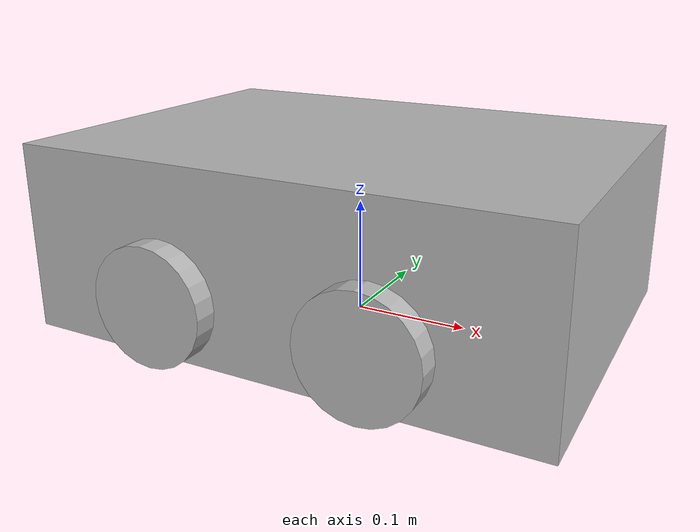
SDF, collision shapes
<?xml version="1.0"?>
<sdf version="1.8">
  <model name="swarm_bot_hex">
    <pose>0 0 0 0 0 0</pose>

    <link name="chassis">
      <pose>0 0 0 0 0 0</pose>

      <inertial>
        <mass>1.4</mass>
        <inertia>
          <ixx>0.014</ixx>
          <iyy>0.022</iyy>
          <izz>0.034</izz>
          <ixy>0.0</ixy>
          <ixz>0.0</ixz>
          <iyz>0.0</iyz>
        </inertia>
      </inertial>

      <collision name="collision">
        <pose>0 0 0.08 0 0 0</pose>
        <geometry>
          <box>
            <size>0.45 0.32 0.16</size>
          </box>
        </geometry>
      </collision>

      <visual name="textured_robot_body">
        <pose>0 0 0.02 0 0 0</pose>
        <geometry>
          <mesh>
            <uri>model://robot_textured/meshes/robot.dae</uri>
            <scale>1 1 1</scale>
          </mesh>
        </geometry>
      </visual>

      <sensor name="lidar" type="gpu_lidar">
        <pose>0 0 0.085 0 0 0</pose>
        <update_rate>3</update_rate>

        <ray>
          <scan>
            <horizontal>
              <samples>90</samples>
              <resolution>1</resolution>
              <min_angle>-3.14159</min_angle>
              <max_angle>3.14159</max_angle>
            </horizontal>
          </scan>

          <range>
            <min>0.10</min>
            <max>8.0</max>
            <resolution>0.05</resolution>
          </range>
        </ray>

        <always_on>1</always_on>
        <visualize>false</visualize>
      </sensor>

      <sensor name="lidar_3d" type="gpu_lidar">
        <pose>0 0 0.155 0 0 0</pose>
        <update_rate>2</update_rate>

        <ray>
          <scan>
            <horizontal>
              <samples>90</samples>
              <resolution>1</resolution>
              <min_angle>-3.14159</min_angle>
              <max_angle>3.14159</max_angle>
            </horizontal>

            <vertical>
              <samples>6</samples>
              <resolution>1</resolution>
              <min_angle>-0.40</min_angle>
              <max_angle>0.30</max_angle>
            </vertical>
          </scan>

          <range>
            <min>0.25</min>
            <max>7.0</max>
            <resolution>0.05</resolution>
          </range>
        </ray>

        <always_on>1</always_on>
        <visualize>false</visualize>
      </sensor>

      <sensor name="front_camera" type="camera">
        <pose>0.18 0 0.105 0 0 0</pose>
        <update_rate>10</update_rate>

        <camera>
          <horizontal_fov>1.3962634</horizontal_fov>
          <image>
            <width>640</width>
            <height>480</height>
            <format>R8G8B8</format>
          </image>
          <clip>
            <near>0.05</near>
            <far>30.0</far>
          </clip>
        </camera>

        <always_on>1</always_on>
        <visualize>false</visualize>
      </sensor>
    </link>

    <link name="left_front_wheel">
      <pose>0.09 0.165 0.05 1.5708 0 0</pose>
      <inertial>
        <mass>0.12</mass>
        <inertia>
          <ixx>0.00025</ixx>
          <iyy>0.00025</iyy>
          <izz>0.00025</izz>
          <ixy>0.0</ixy>
          <ixz>0.0</ixz>
          <iyz>0.0</iyz>
        </inertia>
      </inertial>
      <collision name="collision">
        <geometry>
          <cylinder>
            <radius>0.05</radius>
            <length>0.03</length>
          </cylinder>
        </geometry>
        <surface>
          <friction>
            <ode>
              <mu>1.2</mu>
              <mu2>1.2</mu2>
              <slip1>0.03</slip1>
              <slip2>0.03</slip2>
            </ode>
          </friction>
        </surface>
      </collision>
    </link>

    <link name="left_rear_wheel">
      <pose>-0.09 0.165 0.05 1.5708 0 0</pose>
      <inertial>
        <mass>0.12</mass>
        <inertia>
          <ixx>0.00025</ixx>
          <iyy>0.00025</iyy>
          <izz>0.00025</izz>
          <ixy>0.0</ixy>
          <ixz>0.0</ixz>
          <iyz>0.0</iyz>
        </inertia>
      </inertial>
      <collision name="collision">
        <geometry>
          <cylinder>
            <radius>0.05</radius>
            <length>0.03</length>
          </cylinder>
        </geometry>
        <surface>
          <friction>
            <ode>
              <mu>1.2</mu>
              <mu2>1.2</mu2>
              <slip1>0.03</slip1>
              <slip2>0.03</slip2>
            </ode>
          </friction>
        </surface>
      </collision>
    </link>

    <link name="right_front_wheel">
      <pose>0.09 -0.165 0.05 1.5708 0 0</pose>
      <inertial>
        <mass>0.12</mass>
        <inertia>
          <ixx>0.00025</ixx>
          <iyy>0.00025</iyy>
          <izz>0.00025</izz>
          <ixy>0.0</ixy>
          <ixz>0.0</ixz>
          <iyz>0.0</iyz>
        </inertia>
      </inertial>
      <collision name="collision">
        <geometry>
          <cylinder>
            <radius>0.05</radius>
            <length>0.03</length>
          </cylinder>
        </geometry>
        <surface>
          <friction>
            <ode>
              <mu>1.2</mu>
              <mu2>1.2</mu2>
              <slip1>0.03</slip1>
              <slip2>0.03</slip2>
            </ode>
          </friction>
        </surface>
      </collision>
    </link>

    <link name="right_rear_wheel">
      <pose>-0.09 -0.165 0.05 1.5708 0 0</pose>
      <inertial>
        <mass>0.12</mass>
        <inertia>
          <ixx>0.00025</ixx>
          <iyy>0.00025</iyy>
          <izz>0.00025</izz>
          <ixy>0.0</ixy>
          <ixz>0.0</ixz>
          <iyz>0.0</iyz>
        </inertia>
      </inertial>
      <collision name="collision">
        <geometry>
          <cylinder>
            <radius>0.05</radius>
            <length>0.03</length>
          </cylinder>
        </geometry>
        <surface>
          <friction>
            <ode>
              <mu>1.2</mu>
              <mu2>1.2</mu2>
              <slip1>0.03</slip1>
              <slip2>0.03</slip2>
            </ode>
          </friction>
        </surface>
      </collision>
    </link>

    <joint name="left_front_wheel_joint" type="revolute">
      <parent>chassis</parent>
      <child>left_front_wheel</child>
      <axis>
        <xyz expressed_in="__model__">0 1 0</xyz>
        <limit>
          <lower>-1e16</lower>
          <upper>1e16</upper>
        </limit>
        <dynamics>
          <damping>0.08</damping>
        </dynamics>
      </axis>
    </joint>

    <joint name="left_rear_wheel_joint" type="revolute">
      <parent>chassis</parent>
      <child>left_rear_wheel</child>
      <axis>
        <xyz expressed_in="__model__">0 1 0</xyz>
        <limit>
          <lower>-1e16</lower>
          <upper>1e16</upper>
        </limit>
        <dynamics>
          <damping>0.08</damping>
        </dynamics>
      </axis>
    </joint>

    <joint name="right_front_wheel_joint" type="revolute">
      <parent>chassis</parent>
      <child>right_front_wheel</child>
      <axis>
        <xyz expressed_in="__model__">0 1 0</xyz>
        <limit>
          <lower>-1e16</lower>
          <upper>1e16</upper>
        </limit>
        <dynamics>
          <damping>0.08</damping>
        </dynamics>
      </axis>
    </joint>

    <joint name="right_rear_wheel_joint" type="revolute">
      <parent>chassis</parent>
      <child>right_rear_wheel</child>
      <axis>
        <xyz expressed_in="__model__">0 1 0</xyz>
        <limit>
          <lower>-1e16</lower>
          <upper>1e16</upper>
        </limit>
        <dynamics>
          <damping>0.08</damping>
        </dynamics>
      </axis>
    </joint>

    <plugin filename="gz-sim-diff-drive-system" name="gz::sim::systems::DiffDrive">
      <left_joint>left_front_wheel_joint</left_joint>
      <left_joint>left_rear_wheel_joint</left_joint>

      <right_joint>right_front_wheel_joint</right_joint>
      <right_joint>right_rear_wheel_joint</right_joint>

      <wheel_separation>0.33</wheel_separation>
      <wheel_radius>0.05</wheel_radius>

      <frame_id>odom</frame_id>
      <child_frame_id>chassis</child_frame_id>

      <odom_publish_frequency>5</odom_publish_frequency>
    </plugin>

  </model>
</sdf>
